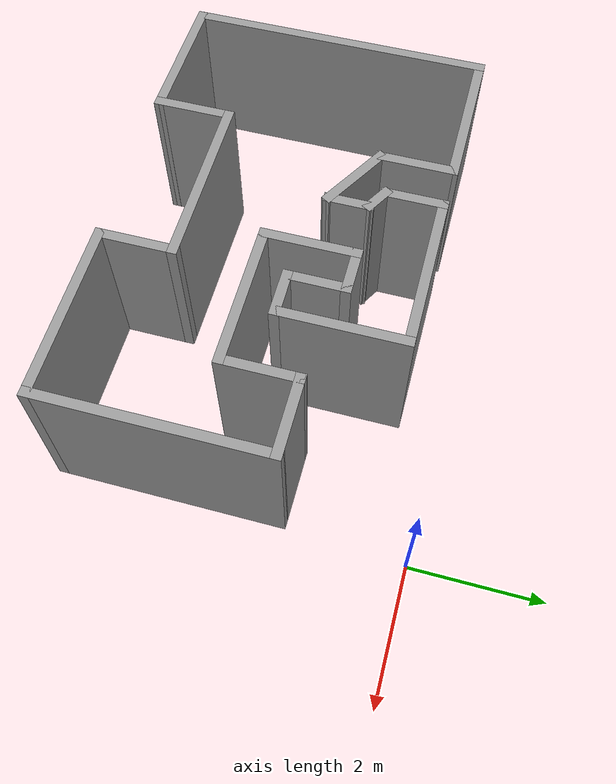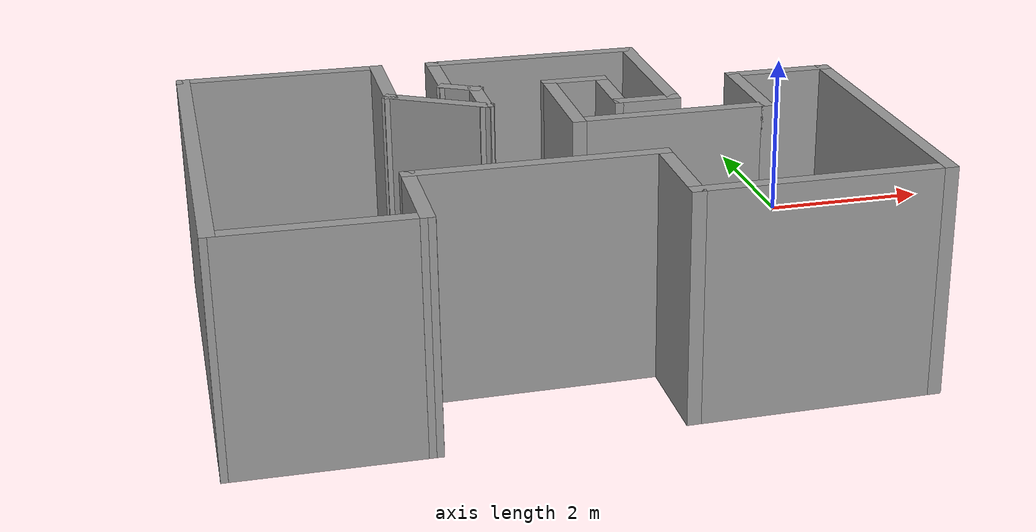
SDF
<?xml version='1.0'?>
<sdf version='1.7'>
  <model name='gazebo_map_1'>
    <pose>-3.71316 -2.65066 0 0 -0 0</pose>
    <link name='Wall_1'>
      <collision name='Wall_1_Collision'>
        <geometry>
          <box>
            <size>2.33002 0.15 2.5</size>
          </box>
        </geometry>
        <pose>0 0 1.25 0 -0 0</pose>
      </collision>
      <visual name='Wall_1_Visual'>
        <pose>0 0 1.25 0 -0 0</pose>
        <geometry>
          <box>
            <size>2.33002 0.15 2.5</size>
          </box>
        </geometry>
        <material>
          <script>
            <uri>file://media/materials/scripts/gazebo.material</uri>
            <name>Gazebo/Grey</name>
          </script>
          <ambient>1 1 1 1</ambient>
        </material>
        <meta>
          <layer>0</layer>
        </meta>
      </visual>
      <pose>-2.54684 2.05566 0 0 -0 -0.004587</pose>
    </link>
    <link name='Wall_10'>
      <collision name='Wall_10_Collision'>
        <geometry>
          <box>
            <size>1 0.15 2.5</size>
          </box>
        </geometry>
        <pose>0 0 1.25 0 -0 0</pose>
      </collision>
      <visual name='Wall_10_Visual'>
        <pose>0 0 1.25 0 -0 0</pose>
        <geometry>
          <box>
            <size>1 0.15 2.5</size>
          </box>
        </geometry>
        <material>
          <script>
            <uri>file://media/materials/scripts/gazebo.material</uri>
            <name>Gazebo/Grey</name>
          </script>
          <ambient>1 1 1 1</ambient>
        </material>
        <meta>
          <layer>0</layer>
        </meta>
      </visual>
      <pose>0.942676 0.600657 0 0 -0 1.5708</pose>
    </link>
    <link name='Wall_11'>
      <collision name='Wall_11_Collision'>
        <geometry>
          <box>
            <size>0.75 0.15 2.5</size>
          </box>
        </geometry>
        <pose>0 0 1.25 0 -0 0</pose>
      </collision>
      <visual name='Wall_11_Visual'>
        <pose>0 0 1.25 0 -0 0</pose>
        <geometry>
          <box>
            <size>0.75 0.15 2.5</size>
          </box>
        </geometry>
        <material>
          <script>
            <uri>file://media/materials/scripts/gazebo.material</uri>
            <name>Gazebo/Grey</name>
          </script>
          <ambient>1 1 1 1</ambient>
        </material>
        <meta>
          <layer>0</layer>
        </meta>
      </visual>
      <pose>0.642676 1.02566 0 0 -0 3.14159</pose>
    </link>
    <link name='Wall_12'>
      <collision name='Wall_12_Collision'>
        <geometry>
          <box>
            <size>1.5 0.15 2.5</size>
          </box>
        </geometry>
        <pose>0 0 1.25 0 -0 0</pose>
      </collision>
      <visual name='Wall_12_Visual'>
        <pose>0 0 1.25 0 -0 0</pose>
        <geometry>
          <box>
            <size>1.5 0.15 2.5</size>
          </box>
        </geometry>
        <material>
          <script>
            <uri>file://media/materials/scripts/gazebo.material</uri>
            <name>Gazebo/Grey</name>
          </script>
          <ambient>1 1 1 1</ambient>
        </material>
        <meta>
          <layer>0</layer>
        </meta>
      </visual>
      <pose>0.342676 0.350657 0 0 -0 -1.5708</pose>
    </link>
    <link name='Wall_13'>
      <collision name='Wall_13_Collision'>
        <geometry>
          <box>
            <size>2.25 0.15 2.5</size>
          </box>
        </geometry>
        <pose>0 0 1.25 0 -0 0</pose>
      </collision>
      <visual name='Wall_13_Visual'>
        <pose>0 0 1.25 0 -0 0</pose>
        <geometry>
          <box>
            <size>2.25 0.15 2.5</size>
          </box>
        </geometry>
        <material>
          <script>
            <uri>file://media/materials/scripts/gazebo.material</uri>
            <name>Gazebo/Grey</name>
          </script>
          <ambient>1 1 1 1</ambient>
        </material>
        <meta>
          <layer>0</layer>
        </meta>
      </visual>
      <pose>1.39268 -0.324343 0 0 -0 0</pose>
    </link>
    <link name='Wall_14'>
      <collision name='Wall_14_Collision'>
        <geometry>
          <box>
            <size>1.25 0.15 2.5</size>
          </box>
        </geometry>
        <pose>0 0 1.25 0 -0 0</pose>
      </collision>
      <visual name='Wall_14_Visual'>
        <pose>0 0 1.25 0 -0 0</pose>
        <geometry>
          <box>
            <size>1.25 0.15 2.5</size>
          </box>
        </geometry>
        <material>
          <script>
            <uri>file://media/materials/scripts/gazebo.material</uri>
            <name>Gazebo/Grey</name>
          </script>
          <ambient>1 1 1 1</ambient>
        </material>
        <meta>
          <layer>0</layer>
        </meta>
      </visual>
      <pose>2.44268 0.225657 0 0 -0 1.5708</pose>
    </link>
    <link name='Wall_15'>
      <collision name='Wall_15_Collision'>
        <geometry>
          <box>
            <size>1.25 0.15 2.5</size>
          </box>
        </geometry>
        <pose>0 0 1.25 0 -0 0</pose>
      </collision>
      <visual name='Wall_15_Visual'>
        <pose>0 0 1.25 0 -0 0</pose>
        <geometry>
          <box>
            <size>1.25 0.15 2.5</size>
          </box>
        </geometry>
        <material>
          <script>
            <uri>file://media/materials/scripts/gazebo.material</uri>
            <name>Gazebo/Grey</name>
          </script>
          <ambient>1 1 1 1</ambient>
        </material>
        <meta>
          <layer>0</layer>
        </meta>
      </visual>
      <pose>2.99268 0.775657 0 0 -0 0</pose>
    </link>
    <link name='Wall_16'>
      <collision name='Wall_16_Collision'>
        <geometry>
          <box>
            <size>3.5 0.15 2.5</size>
          </box>
        </geometry>
        <pose>0 0 1.25 0 -0 0</pose>
      </collision>
      <visual name='Wall_16_Visual'>
        <pose>0 0 1.25 0 -0 0</pose>
        <geometry>
          <box>
            <size>3.5 0.15 2.5</size>
          </box>
        </geometry>
        <material>
          <script>
            <uri>file://media/materials/scripts/gazebo.material</uri>
            <name>Gazebo/Grey</name>
          </script>
          <ambient>1 1 1 1</ambient>
        </material>
        <meta>
          <layer>0</layer>
        </meta>
      </visual>
      <pose>3.54268 -0.899343 0 0 -0 -1.5708</pose>
    </link>
    <link name='Wall_17'>
      <collision name='Wall_17_Collision'>
        <geometry>
          <box>
            <size>2.75 0.15 2.5</size>
          </box>
        </geometry>
        <pose>0 0 1.25 0 -0 0</pose>
      </collision>
      <visual name='Wall_17_Visual'>
        <pose>0 0 1.25 0 -0 0</pose>
        <geometry>
          <box>
            <size>2.75 0.15 2.5</size>
          </box>
        </geometry>
        <material>
          <script>
            <uri>file://media/materials/scripts/gazebo.material</uri>
            <name>Gazebo/Grey</name>
          </script>
          <ambient>1 1 1 1</ambient>
        </material>
        <meta>
          <layer>0</layer>
        </meta>
      </visual>
      <pose>2.24268 -2.57434 0 0 -0 3.14159</pose>
    </link>
    <link name='Wall_18'>
      <collision name='Wall_18_Collision'>
        <geometry>
          <box>
            <size>1.25 0.15 2.5</size>
          </box>
        </geometry>
        <pose>0 0 1.25 0 -0 0</pose>
      </collision>
      <visual name='Wall_18_Visual'>
        <pose>0 0 1.25 0 -0 0</pose>
        <geometry>
          <box>
            <size>1.25 0.15 2.5</size>
          </box>
        </geometry>
        <material>
          <script>
            <uri>file://media/materials/scripts/gazebo.material</uri>
            <name>Gazebo/Grey</name>
          </script>
          <ambient>1 1 1 1</ambient>
        </material>
        <meta>
          <layer>0</layer>
        </meta>
      </visual>
      <pose>0.942676 -2.02434 0 0 -0 1.5708</pose>
    </link>
    <link name='Wall_19'>
      <collision name='Wall_19_Collision'>
        <geometry>
          <box>
            <size>2.75 0.15 2.5</size>
          </box>
        </geometry>
        <pose>0 0 1.25 0 -0 0</pose>
      </collision>
      <visual name='Wall_19_Visual'>
        <pose>0 0 1.25 0 -0 0</pose>
        <geometry>
          <box>
            <size>2.75 0.15 2.5</size>
          </box>
        </geometry>
        <material>
          <script>
            <uri>file://media/materials/scripts/gazebo.material</uri>
            <name>Gazebo/Grey</name>
          </script>
          <ambient>1 1 1 1</ambient>
        </material>
        <meta>
          <layer>0</layer>
        </meta>
      </visual>
      <pose>-0.357324 -1.47434 0 0 -0 3.14159</pose>
    </link>
    <link name='Wall_2'>
      <collision name='Wall_2_Collision'>
        <geometry>
          <box>
            <size>1.25 0.15 2.5</size>
          </box>
        </geometry>
        <pose>0 0 1.25 0 -0 0</pose>
      </collision>
      <visual name='Wall_2_Visual'>
        <pose>0 0 1.25 0 -0 0</pose>
        <geometry>
          <box>
            <size>1.25 0.15 2.5</size>
          </box>
        </geometry>
        <material>
          <script>
            <uri>file://media/materials/scripts/gazebo.material</uri>
            <name>Gazebo/Grey</name>
          </script>
          <ambient>1 1 1 1</ambient>
        </material>
        <meta>
          <layer>0</layer>
        </meta>
      </visual>
      <pose>-1.45684 1.50066 0 0 -0 -1.5708</pose>
    </link>
    <link name='Wall_20'>
      <collision name='Wall_20_Collision'>
        <geometry>
          <box>
            <size>1.25 0.15 2.5</size>
          </box>
        </geometry>
        <pose>0 0 1.25 0 -0 0</pose>
      </collision>
      <visual name='Wall_20_Visual'>
        <pose>0 0 1.25 0 -0 0</pose>
        <geometry>
          <box>
            <size>1.25 0.15 2.5</size>
          </box>
        </geometry>
        <material>
          <script>
            <uri>file://media/materials/scripts/gazebo.material</uri>
            <name>Gazebo/Grey</name>
          </script>
          <ambient>1 1 1 1</ambient>
        </material>
        <meta>
          <layer>0</layer>
        </meta>
      </visual>
      <pose>-1.65732 -2.02434 0 0 -0 -1.5708</pose>
    </link>
    <link name='Wall_23'>
      <collision name='Wall_23_Collision'>
        <geometry>
          <box>
            <size>4.75 0.15 2.5</size>
          </box>
        </geometry>
        <pose>0 0 1.25 0 -0 0</pose>
      </collision>
      <visual name='Wall_23_Visual'>
        <pose>0 0 1.25 0 -0 0</pose>
        <geometry>
          <box>
            <size>4.75 0.15 2.5</size>
          </box>
        </geometry>
        <material>
          <script>
            <uri>file://media/materials/scripts/gazebo.material</uri>
            <name>Gazebo/Grey</name>
          </script>
          <ambient>1 1 1 1</ambient>
        </material>
        <meta>
          <layer>0</layer>
        </meta>
      </visual>
      <pose>-3.63684 -0.239343 0 0 -0 -1.5708</pose>
    </link>
    <link name='Wall_24'>
      <collision name='Wall_24_Collision'>
        <geometry>
          <box>
            <size>2.12983 0.15 2.5</size>
          </box>
        </geometry>
        <pose>0 0 1.25 0 -0 0</pose>
      </collision>
      <visual name='Wall_24_Visual'>
        <pose>0 0 1.25 0 -0 0</pose>
        <geometry>
          <box>
            <size>2.12983 0.15 2.5</size>
          </box>
        </geometry>
        <material>
          <script>
            <uri>file://media/materials/scripts/gazebo.material</uri>
            <name>Gazebo/Grey</name>
          </script>
          <ambient>1 1 1 1</ambient>
        </material>
        <meta>
          <layer>0</layer>
        </meta>
      </visual>
      <pose>-2.64708 -2.55684 0 0 -0 -0.017679</pose>
    </link>
    <link name='Wall_3'>
      <collision name='Wall_3_Collision'>
        <geometry>
          <box>
            <size>1.25 0.15 2.5</size>
          </box>
        </geometry>
        <pose>0 0 1.25 0 -0 0</pose>
      </collision>
      <visual name='Wall_3_Visual'>
        <pose>0 0 1.25 0 -0 0</pose>
        <geometry>
          <box>
            <size>1.25 0.15 2.5</size>
          </box>
        </geometry>
        <material>
          <script>
            <uri>file://media/materials/scripts/gazebo.material</uri>
            <name>Gazebo/Grey</name>
          </script>
          <ambient>1 1 1 1</ambient>
        </material>
        <meta>
          <layer>0</layer>
        </meta>
      </visual>
      <pose>-0.980529 0.675657 0 0 -0 -0.523599</pose>
    </link>
    <link name='Wall_4'>
      <collision name='Wall_4_Collision'>
        <geometry>
          <box>
            <size>0.75 0.15 2.5</size>
          </box>
        </geometry>
        <pose>0 0 1.25 0 -0 0</pose>
      </collision>
      <visual name='Wall_4_Visual'>
        <pose>0 0 1.25 0 -0 0</pose>
        <geometry>
          <box>
            <size>0.75 0.15 2.5</size>
          </box>
        </geometry>
        <material>
          <script>
            <uri>file://media/materials/scripts/gazebo.material</uri>
            <name>Gazebo/Grey</name>
          </script>
          <ambient>1 1 1 1</ambient>
        </material>
        <meta>
          <layer>0</layer>
        </meta>
      </visual>
      <pose>-0.504215 0.700657 0 0 -0 1.5708</pose>
    </link>
    <link name='Wall_5'>
      <collision name='Wall_5_Collision'>
        <geometry>
          <box>
            <size>0.5 0.15 2.5</size>
          </box>
        </geometry>
        <pose>0 0 1.25 0 -0 0</pose>
      </collision>
      <visual name='Wall_5_Visual'>
        <pose>0 0 1.25 0 -0 0</pose>
        <geometry>
          <box>
            <size>0.5 0.15 2.5</size>
          </box>
        </geometry>
        <material>
          <script>
            <uri>file://media/materials/scripts/gazebo.material</uri>
            <name>Gazebo/Grey</name>
          </script>
          <ambient>1 1 1 1</ambient>
        </material>
        <meta>
          <layer>0</layer>
        </meta>
      </visual>
      <pose>-0.655769 1.08816 0 0 -0 2.61799</pose>
    </link>
    <link name='Wall_6'>
      <collision name='Wall_6_Collision'>
        <geometry>
          <box>
            <size>1 0.15 2.5</size>
          </box>
        </geometry>
        <pose>0 0 1.25 0 -0 0</pose>
      </collision>
      <visual name='Wall_6_Visual'>
        <pose>0 0 1.25 0 -0 0</pose>
        <geometry>
          <box>
            <size>1 0.15 2.5</size>
          </box>
        </geometry>
        <material>
          <script>
            <uri>file://media/materials/scripts/gazebo.material</uri>
            <name>Gazebo/Grey</name>
          </script>
          <ambient>1 1 1 1</ambient>
        </material>
        <meta>
          <layer>0</layer>
        </meta>
      </visual>
      <pose>-0.807324 1.60066 0 0 -0 1.5708</pose>
    </link>
    <link name='Wall_7'>
      <collision name='Wall_7_Collision'>
        <geometry>
          <box>
            <size>2.5 0.15 2.5</size>
          </box>
        </geometry>
        <pose>0 0 1.25 0 -0 0</pose>
      </collision>
      <visual name='Wall_7_Visual'>
        <pose>0 0 1.25 0 -0 0</pose>
        <geometry>
          <box>
            <size>2.5 0.15 2.5</size>
          </box>
        </geometry>
        <material>
          <script>
            <uri>file://media/materials/scripts/gazebo.material</uri>
            <name>Gazebo/Grey</name>
          </script>
          <ambient>1 1 1 1</ambient>
        </material>
        <meta>
          <layer>0</layer>
        </meta>
      </visual>
      <pose>0.367676 2.02566 0 0 -0 0</pose>
    </link>
    <link name='Wall_8'>
      <collision name='Wall_8_Collision'>
        <geometry>
          <box>
            <size>2 0.15 2.5</size>
          </box>
        </geometry>
        <pose>0 0 1.25 0 -0 0</pose>
      </collision>
      <visual name='Wall_8_Visual'>
        <pose>0 0 1.25 0 -0 0</pose>
        <geometry>
          <box>
            <size>2 0.15 2.5</size>
          </box>
        </geometry>
        <material>
          <script>
            <uri>file://media/materials/scripts/gazebo.material</uri>
            <name>Gazebo/Grey</name>
          </script>
          <ambient>1 1 1 1</ambient>
        </material>
        <meta>
          <layer>0</layer>
        </meta>
      </visual>
      <pose>1.54268 1.10066 0 0 -0 -1.5708</pose>
    </link>
    <link name='Wall_9'>
      <collision name='Wall_9_Collision'>
        <geometry>
          <box>
            <size>0.75 0.15 2.5</size>
          </box>
        </geometry>
        <pose>0 0 1.25 0 -0 0</pose>
      </collision>
      <visual name='Wall_9_Visual'>
        <pose>0 0 1.25 0 -0 0</pose>
        <geometry>
          <box>
            <size>0.75 0.15 2.5</size>
          </box>
        </geometry>
        <material>
          <script>
            <uri>file://media/materials/scripts/gazebo.material</uri>
            <name>Gazebo/Grey</name>
          </script>
          <ambient>1 1 1 1</ambient>
        </material>
        <meta>
          <layer>0</layer>
        </meta>
      </visual>
      <pose>1.24268 0.175657 0 0 -0 3.14159</pose>
    </link>
    <static>1</static>
  </model>
</sdf>
